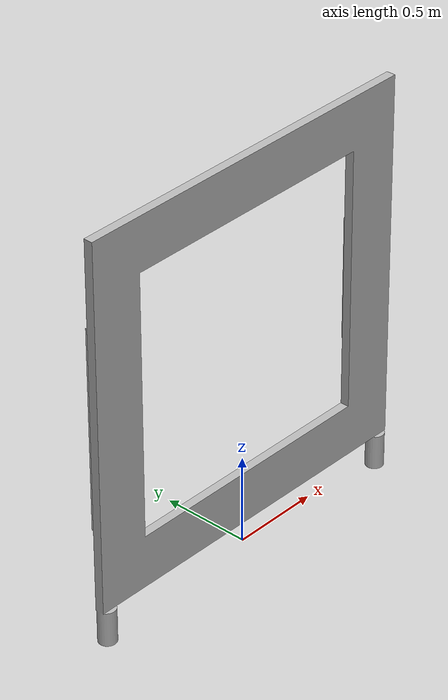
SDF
<?xml version='1.0'?>
<sdf version='1.6'>
  <model name="gate">
    <static>true</static>
    <pose>0 0 1.2 1.5708 3.14159 0</pose>
    <link name="gate">
      <visual name="gate">
        <geometry>
          <mesh>
            <uri>model://gate/gate.dae</uri>
            <scale>0.00992 0.00992 0.00992</scale>
          </mesh>
        </geometry>
      </visual>
      <collision name="gate_collision">
        <geometry>
          <mesh>
            <uri>model://gate/gate.dae</uri>
            <scale>0.00992 0.00992 0.00992</scale>
          </mesh>
        </geometry>
      </collision>
    </link>
  </model>
</sdf>
